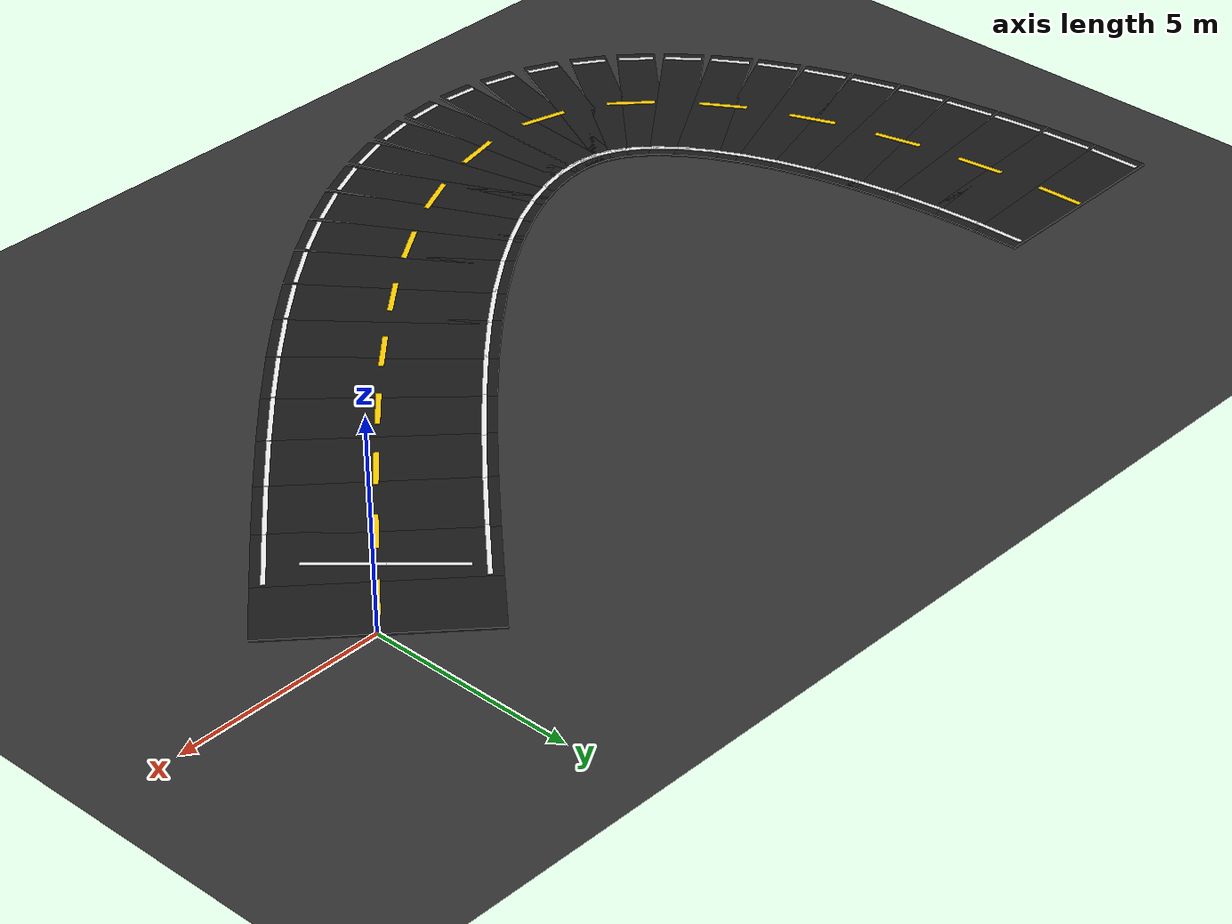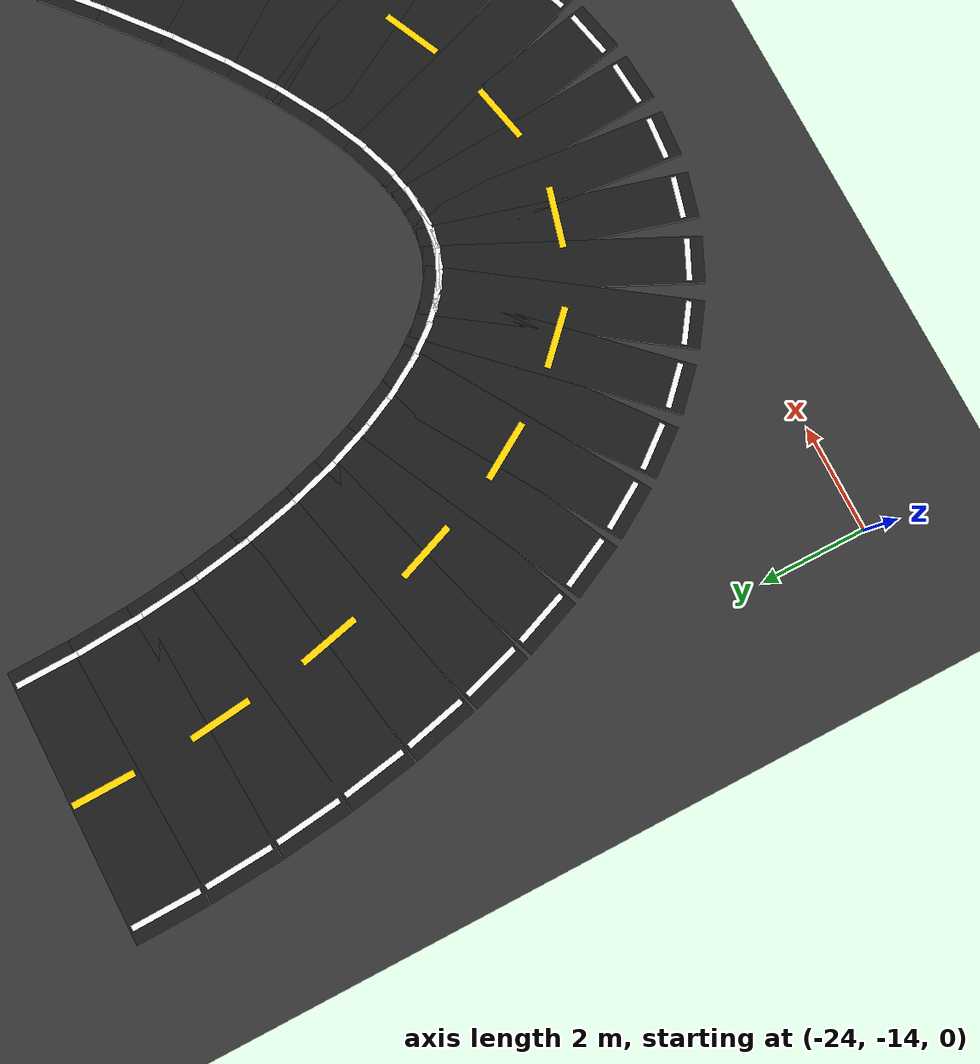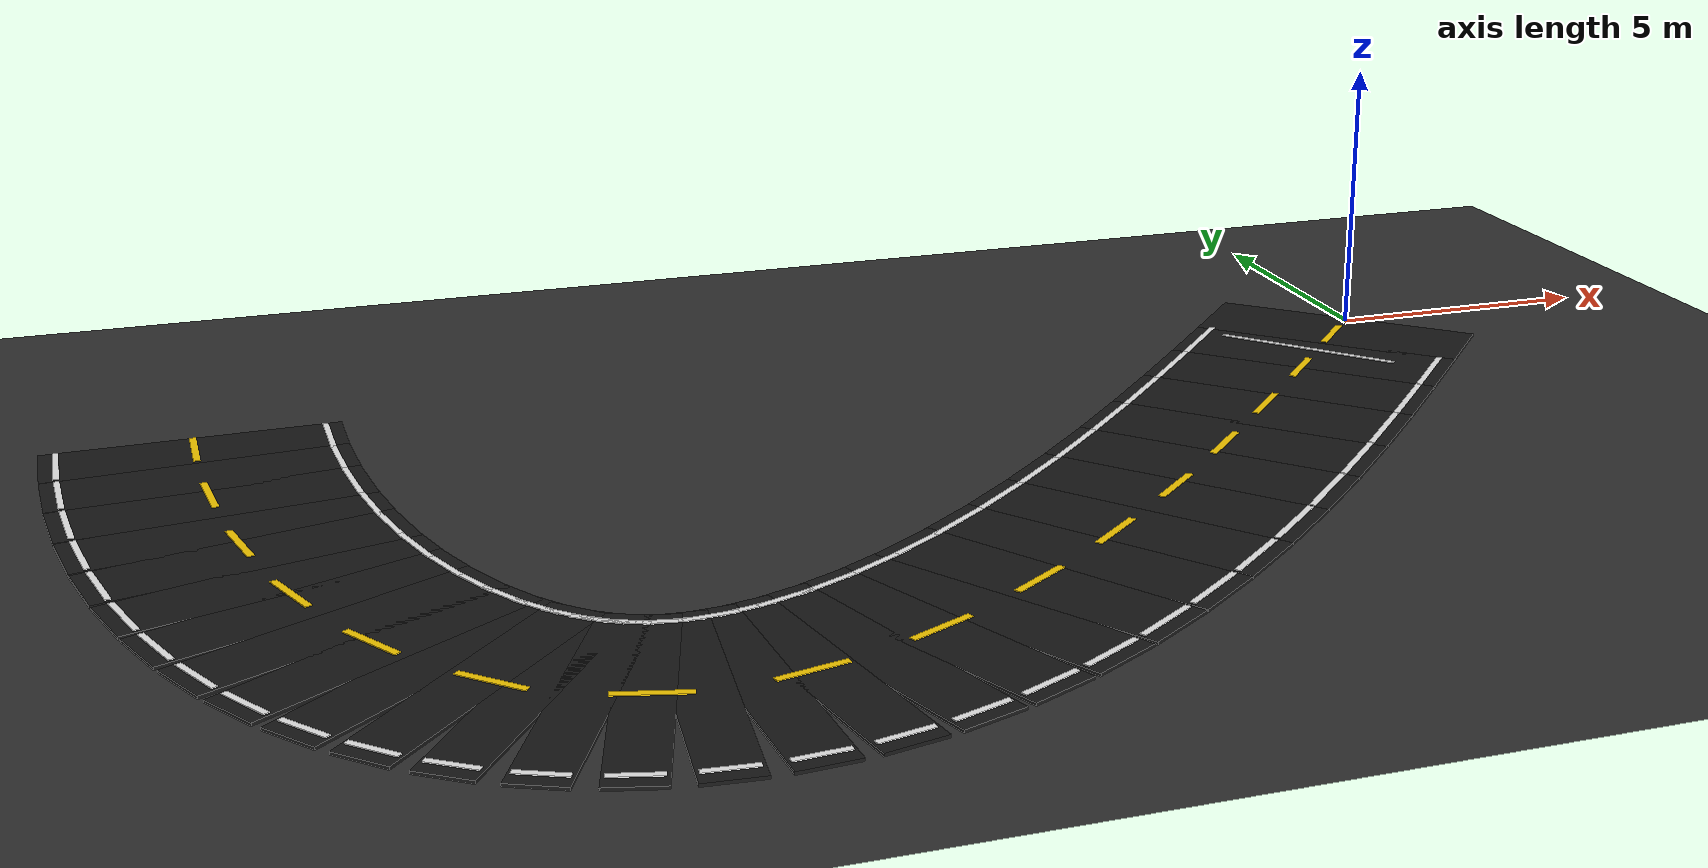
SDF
<sdf version="1.6">
 <world name="adas_figure8_circuit">
  <model name="ground">
   <static>true</static>
   <link name="link">
    <collision name="collision">
     <geometry><plane><normal>0 0 1</normal><size>80.0 80.0</size></plane></geometry>
    </collision>
    <visual name="visual">
     <geometry><plane><normal>0 0 1</normal><size>80.0 80.0</size></plane></geometry>
     <material><ambient>0.16 0.16 0.16 1</ambient><diffuse>0.20 0.20 0.20 1</diffuse></material>
    </visual>
   </link>
  </model>
  <model name="road_090">
   <static>true</static>
   <pose>-21.9849 -0.6272 0.025 0 0 -1.546764</pose>
   <link name="link">
    <collision name="collision"><geometry><box><size>1.3547 5.000 0.05</size></box></geometry></collision>
    <visual name="visual">
     <geometry><box><size>1.3547 5.000 0.05</size></box></geometry>
     <material><ambient>0.07 0.07 0.07 1</ambient><diffuse>0.10 0.10 0.10 1</diffuse></material>
    </visual>
   </link>
  </model>
  <model name="road_091">
   <static>true</static>
   <pose>-21.9247 -1.8746 0.025 0 0 -1.498082</pose>
   <link name="link">
    <collision name="collision"><geometry><box><size>1.3439 5.000 0.05</size></box></geometry></collision>
    <visual name="visual">
     <geometry><box><size>1.3439 5.000 0.05</size></box></geometry>
     <material><ambient>0.07 0.07 0.07 1</ambient><diffuse>0.10 0.10 0.10 1</diffuse></material>
    </visual>
   </link>
  </model>
  <model name="road_092">
   <static>true</static>
   <pose>-21.8043 -3.1016 0.025 0 0 -1.447513</pose>
   <link name="link">
    <collision name="collision"><geometry><box><size>1.3225 5.000 0.05</size></box></geometry></collision>
    <visual name="visual">
     <geometry><box><size>1.3225 5.000 0.05</size></box></geometry>
     <material><ambient>0.07 0.07 0.07 1</ambient><diffuse>0.10 0.10 0.10 1</diffuse></material>
    </visual>
   </link>
  </model>
  <model name="road_093">
   <static>true</static>
   <pose>-21.6242 -4.2945 0.025 0 0 -1.393677</pose>
   <link name="link">
    <collision name="collision"><geometry><box><size>1.2913 5.000 0.05</size></box></geometry></collision>
    <visual name="visual">
     <geometry><box><size>1.2913 5.000 0.05</size></box></geometry>
     <material><ambient>0.07 0.07 0.07 1</ambient><diffuse>0.10 0.10 0.10 1</diffuse></material>
    </visual>
   </link>
  </model>
  <model name="road_094">
   <static>true</static>
   <pose>-21.3848 -5.4404 0.025 0 0 -1.335014</pose>
   <link name="link">
    <collision name="collision"><geometry><box><size>1.2510 5.000 0.05</size></box></geometry></collision>
    <visual name="visual">
     <geometry><box><size>1.2510 5.000 0.05</size></box></geometry>
     <material><ambient>0.07 0.07 0.07 1</ambient><diffuse>0.10 0.10 0.10 1</diffuse></material>
    </visual>
   </link>
  </model>
  <model name="road_095">
   <static>true</static>
   <pose>-21.0868 -6.5267 0.025 0 0 -1.269703</pose>
   <link name="link">
    <collision name="collision"><geometry><box><size>1.2030 5.000 0.05</size></box></geometry></collision>
    <visual name="visual">
     <geometry><box><size>1.2030 5.000 0.05</size></box></geometry>
     <material><ambient>0.07 0.07 0.07 1</ambient><diffuse>0.10 0.10 0.10 1</diffuse></material>
    </visual>
   </link>
  </model>
  <model name="road_096">
   <static>true</static>
   <pose>-20.7310 -7.5415 0.025 0 0 -1.195586</pose>
   <link name="link">
    <collision name="collision"><geometry><box><size>1.1491 5.000 0.05</size></box></geometry></collision>
    <visual name="visual">
     <geometry><box><size>1.1491 5.000 0.05</size></box></geometry>
     <material><ambient>0.07 0.07 0.07 1</ambient><diffuse>0.10 0.10 0.10 1</diffuse></material>
    </visual>
   </link>
  </model>
  <model name="road_097">
   <static>true</static>
   <pose>-20.3184 -8.4737 0.025 0 0 -1.110140</pose>
   <link name="link">
    <collision name="collision"><geometry><box><size>1.0915 5.000 0.05</size></box></geometry></collision>
    <visual name="visual">
     <geometry><box><size>1.0915 5.000 0.05</size></box></geometry>
     <material><ambient>0.07 0.07 0.07 1</ambient><diffuse>0.10 0.10 0.10 1</diffuse></material>
    </visual>
   </link>
  </model>
  <model name="road_098">
   <static>true</static>
   <pose>-19.8501 -9.3130 0.025 0 0 -1.010547</pose>
   <link name="link">
    <collision name="collision"><geometry><box><size>1.0331 5.000 0.05</size></box></geometry></collision>
    <visual name="visual">
     <geometry><box><size>1.0331 5.000 0.05</size></box></geometry>
     <material><ambient>0.07 0.07 0.07 1</ambient><diffuse>0.10 0.10 0.10 1</diffuse></material>
    </visual>
   </link>
  </model>
  <model name="road_099">
   <static>true</static>
   <pose>-19.3274 -10.0503 0.025 0 0 -0.894005</pose>
   <link name="link">
    <collision name="collision"><geometry><box><size>0.9775 5.000 0.05</size></box></geometry></collision>
    <visual name="visual">
     <geometry><box><size>0.9775 5.000 0.05</size></box></geometry>
     <material><ambient>0.07 0.07 0.07 1</ambient><diffuse>0.10 0.10 0.10 1</diffuse></material>
    </visual>
   </link>
  </model>
  <model name="road_100">
   <static>true</static>
   <pose>-18.7517 -10.6774 0.025 0 0 -0.758473</pose>
   <link name="link">
    <collision name="collision"><geometry><box><size>0.9291 5.000 0.05</size></box></geometry></collision>
    <visual name="visual">
     <geometry><box><size>0.9291 5.000 0.05</size></box></geometry>
     <material><ambient>0.07 0.07 0.07 1</ambient><diffuse>0.10 0.10 0.10 1</diffuse></material>
    </visual>
   </link>
  </model>
  <model name="road_101">
   <static>true</static>
   <pose>-18.1246 -11.1876 0.025 0 0 -0.603974</pose>
   <link name="link">
    <collision name="collision"><geometry><box><size>0.8926 5.000 0.05</size></box></geometry></collision>
    <visual name="visual">
     <geometry><box><size>0.8926 5.000 0.05</size></box></geometry>
     <material><ambient>0.07 0.07 0.07 1</ambient><diffuse>0.10 0.10 0.10 1</diffuse></material>
    </visual>
   </link>
  </model>
  <model name="road_102">
   <static>true</static>
   <pose>-17.4478 -11.5752 0.025 0 0 -0.434146</pose>
   <link name="link">
    <collision name="collision"><geometry><box><size>0.8729 5.000 0.05</size></box></geometry></collision>
    <visual name="visual">
     <geometry><box><size>0.8729 5.000 0.05</size></box></geometry>
     <material><ambient>0.07 0.07 0.07 1</ambient><diffuse>0.10 0.10 0.10 1</diffuse></material>
    </visual>
   </link>
  </model>
  <model name="road_103">
   <static>true</static>
   <pose>-16.7232 -11.8360 0.025 0 0 -0.256877</pose>
   <link name="link">
    <collision name="collision"><geometry><box><size>0.8734 5.000 0.05</size></box></geometry></collision>
    <visual name="visual">
     <geometry><box><size>0.8734 5.000 0.05</size></box></geometry>
     <material><ambient>0.07 0.07 0.07 1</ambient><diffuse>0.10 0.10 0.10 1</diffuse></material>
    </visual>
   </link>
  </model>
  <model name="road_104">
   <static>true</static>
   <pose>-15.9528 -11.9671 0.025 0 0 -0.082725</pose>
   <link name="link">
    <collision name="collision"><geometry><box><size>0.8956 5.000 0.05</size></box></geometry></collision>
    <visual name="visual">
     <geometry><box><size>0.8956 5.000 0.05</size></box></geometry>
     <material><ambient>0.07 0.07 0.07 1</ambient><diffuse>0.10 0.10 0.10 1</diffuse></material>
    </visual>
   </link>
  </model>
  <model name="road_105">
   <static>true</static>
   <pose>-15.1386 -11.9671 0.025 0 0 0.078521</pose>
   <link name="link">
    <collision name="collision"><geometry><box><size>0.9381 5.000 0.05</size></box></geometry></collision>
    <visual name="visual">
     <geometry><box><size>0.9381 5.000 0.05</size></box></geometry>
     <material><ambient>0.07 0.07 0.07 1</ambient><diffuse>0.10 0.10 0.10 1</diffuse></material>
    </visual>
   </link>
  </model>
  <model name="road_106">
   <static>true</static>
   <pose>-14.2830 -11.8360 0.025 0 0 0.220696</pose>
   <link name="link">
    <collision name="collision"><geometry><box><size>0.9976 5.000 0.05</size></box></geometry></collision>
    <visual name="visual">
     <geometry><box><size>0.9976 5.000 0.05</size></box></geometry>
     <material><ambient>0.07 0.07 0.07 1</ambient><diffuse>0.10 0.10 0.10 1</diffuse></material>
    </visual>
   </link>
  </model>
  <model name="road_107">
   <static>true</static>
   <pose>-13.3882 -11.5752 0.025 0 0 0.341806</pose>
   <link name="link">
    <collision name="collision"><geometry><box><size>1.0699 5.000 0.05</size></box></geometry></collision>
    <visual name="visual">
     <geometry><box><size>1.0699 5.000 0.05</size></box></geometry>
     <material><ambient>0.07 0.07 0.07 1</ambient><diffuse>0.10 0.10 0.10 1</diffuse></material>
    </visual>
   </link>
  </model>
  <model name="road_108">
   <static>true</static>
   <pose>-12.4567 -11.1876 0.025 0 0 0.442808</pose>
   <link name="link">
    <collision name="collision"><geometry><box><size>1.1505 5.000 0.05</size></box></geometry></collision>
    <visual name="visual">
     <geometry><box><size>1.1505 5.000 0.05</size></box></geometry>
     <material><ambient>0.07 0.07 0.07 1</ambient><diffuse>0.10 0.10 0.10 1</diffuse></material>
    </visual>
   </link>
  </model>
  <model name="road_109">
   <static>true</static>
   <pose>-11.4910 -10.6774 0.025 0 0 0.526076</pose>
   <link name="link">
    <collision name="collision"><geometry><box><size>1.2356 5.000 0.05</size></box></geometry></collision>
    <visual name="visual">
     <geometry><box><size>1.2356 5.000 0.05</size></box></geometry>
     <material><ambient>0.07 0.07 0.07 1</ambient><diffuse>0.10 0.10 0.10 1</diffuse></material>
    </visual>
   </link>
  </model>
  <model name="road_110">
   <static>true</static>
   <pose>-10.4939 -10.0503 0.025 0 0 0.594333</pose>
   <link name="link">
    <collision name="collision"><geometry><box><size>1.3217 5.000 0.05</size></box></geometry></collision>
    <visual name="visual">
     <geometry><box><size>1.3217 5.000 0.05</size></box></geometry>
     <material><ambient>0.07 0.07 0.07 1</ambient><diffuse>0.10 0.10 0.10 1</diffuse></material>
    </visual>
   </link>
  </model>
  <model name="road_111">
   <static>true</static>
   <pose>-9.4680 -9.3130 0.025 0 0 0.650103</pose>
   <link name="link">
    <collision name="collision"><geometry><box><size>1.4060 5.000 0.05</size></box></geometry></collision>
    <visual name="visual">
     <geometry><box><size>1.4060 5.000 0.05</size></box></geometry>
     <material><ambient>0.07 0.07 0.07 1</ambient><diffuse>0.10 0.10 0.10 1</diffuse></material>
    </visual>
   </link>
  </model>
  <model name="road_112">
   <static>true</static>
   <pose>-8.4162 -8.4737 0.025 0 0 0.695520</pose>
   <link name="link">
    <collision name="collision"><geometry><box><size>1.4861 5.000 0.05</size></box></geometry></collision>
    <visual name="visual">
     <geometry><box><size>1.4861 5.000 0.05</size></box></geometry>
     <material><ambient>0.07 0.07 0.07 1</ambient><diffuse>0.10 0.10 0.10 1</diffuse></material>
    </visual>
   </link>
  </model>
  <model name="road_113">
   <static>true</static>
   <pose>-7.3412 -7.5415 0.025 0 0 0.732304</pose>
   <link name="link">
    <collision name="collision"><geometry><box><size>1.5600 5.000 0.05</size></box></geometry></collision>
    <visual name="visual">
     <geometry><box><size>1.5600 5.000 0.05</size></box></geometry>
     <material><ambient>0.07 0.07 0.07 1</ambient><diffuse>0.10 0.10 0.10 1</diffuse></material>
    </visual>
   </link>
  </model>
  <model name="road_114">
   <static>true</static>
   <pose>-6.2462 -6.5267 0.025 0 0 0.761799</pose>
   <link name="link">
    <collision name="collision"><geometry><box><size>1.6262 5.000 0.05</size></box></geometry></collision>
    <visual name="visual">
     <geometry><box><size>1.6262 5.000 0.05</size></box></geometry>
     <material><ambient>0.07 0.07 0.07 1</ambient><diffuse>0.10 0.10 0.10 1</diffuse></material>
    </visual>
   </link>
  </model>
  <model name="road_115">
   <static>true</static>
   <pose>-5.1340 -5.4404 0.025 0 0 0.785040</pose>
   <link name="link">
    <collision name="collision"><geometry><box><size>1.6833 5.000 0.05</size></box></geometry></collision>
    <visual name="visual">
     <geometry><box><size>1.6833 5.000 0.05</size></box></geometry>
     <material><ambient>0.07 0.07 0.07 1</ambient><diffuse>0.10 0.10 0.10 1</diffuse></material>
    </visual>
   </link>
  </model>
  <model name="road_116">
   <static>true</static>
   <pose>-4.0078 -4.2945 0.025 0 0 0.802808</pose>
   <link name="link">
    <collision name="collision"><geometry><box><size>1.7302 5.000 0.05</size></box></geometry></collision>
    <visual name="visual">
     <geometry><box><size>1.7302 5.000 0.05</size></box></geometry>
     <material><ambient>0.07 0.07 0.07 1</ambient><diffuse>0.10 0.10 0.10 1</diffuse></material>
    </visual>
   </link>
  </model>
  <model name="road_117">
   <static>true</static>
   <pose>-2.8706 -3.1016 0.025 0 0 0.815676</pose>
   <link name="link">
    <collision name="collision"><geometry><box><size>1.7661 5.000 0.05</size></box></geometry></collision>
    <visual name="visual">
     <geometry><box><size>1.7661 5.000 0.05</size></box></geometry>
     <material><ambient>0.07 0.07 0.07 1</ambient><diffuse>0.10 0.10 0.10 1</diffuse></material>
    </visual>
   </link>
  </model>
  <model name="road_118">
   <static>true</static>
   <pose>-1.7255 -1.8746 0.025 0 0 0.824044</pose>
   <link name="link">
    <collision name="collision"><geometry><box><size>1.7904 5.000 0.05</size></box></geometry></collision>
    <visual name="visual">
     <geometry><box><size>1.7904 5.000 0.05</size></box></geometry>
     <material><ambient>0.07 0.07 0.07 1</ambient><diffuse>0.10 0.10 0.10 1</diffuse></material>
    </visual>
   </link>
  </model>
  <model name="road_119">
   <static>true</static>
   <pose>-0.5757 -0.6272 0.025 0 0 0.828166</pose>
   <link name="link">
    <collision name="collision"><geometry><box><size>1.8027 5.000 0.05</size></box></geometry></collision>
    <visual name="visual">
     <geometry><box><size>1.8027 5.000 0.05</size></box></geometry>
     <material><ambient>0.07 0.07 0.07 1</ambient><diffuse>0.10 0.10 0.10 1</diffuse></material>
    </visual>
   </link>
  </model>
  <model name="center_dash_047">
   <static>true</static>
   <pose>-21.9866 -0.5561 0.058 0 0 -1.546764</pose>
   <link name="link">
    <visual name="visual">
     <geometry><box><size>1.150 0.12 0.02</size></box></geometry>
     <material><ambient>1 0.82 0 1</ambient><diffuse>1 0.82 0 1</diffuse></material>
    </visual>
   </link>
  </model>
  <model name="center_dash_048">
   <static>true</static>
   <pose>-21.8447 -2.7756 0.058 0 0 -1.447513</pose>
   <link name="link">
    <visual name="visual">
     <geometry><box><size>1.150 0.12 0.02</size></box></geometry>
     <material><ambient>1 0.82 0 1</ambient><diffuse>1 0.82 0 1</diffuse></material>
    </visual>
   </link>
  </model>
  <model name="center_dash_049">
   <static>true</static>
   <pose>-21.4973 -4.9724 0.058 0 0 -1.335014</pose>
   <link name="link">
    <visual name="visual">
     <geometry><box><size>1.150 0.12 0.02</size></box></geometry>
     <material><ambient>1 0.82 0 1</ambient><diffuse>1 0.82 0 1</diffuse></material>
    </visual>
   </link>
  </model>
  <model name="center_dash_050">
   <static>true</static>
   <pose>-20.8994 -7.1141 0.058 0 0 -1.195586</pose>
   <link name="link">
    <visual name="visual">
     <geometry><box><size>1.150 0.12 0.02</size></box></geometry>
     <material><ambient>1 0.82 0 1</ambient><diffuse>1 0.82 0 1</diffuse></material>
    </visual>
   </link>
  </model>
  <model name="center_dash_051">
   <static>true</static>
   <pose>-19.9653 -9.1292 0.058 0 0 -1.010547</pose>
   <link name="link">
    <visual name="visual">
     <geometry><box><size>1.150 0.12 0.02</size></box></geometry>
     <material><ambient>1 0.82 0 1</ambient><diffuse>1 0.82 0 1</diffuse></material>
    </visual>
   </link>
  </model>
  <model name="center_dash_052">
   <static>true</static>
   <pose>-18.5705 -10.8491 0.058 0 0 -0.758473</pose>
   <link name="link">
    <visual name="visual">
     <geometry><box><size>1.150 0.12 0.02</size></box></geometry>
     <material><ambient>1 0.82 0 1</ambient><diffuse>1 0.82 0 1</diffuse></material>
    </visual>
   </link>
  </model>
  <model name="center_dash_053">
   <static>true</static>
   <pose>-16.6187 -11.8635 0.058 0 0 -0.256877</pose>
   <link name="link">
    <visual name="visual">
     <geometry><box><size>1.150 0.12 0.02</size></box></geometry>
     <material><ambient>1 0.82 0 1</ambient><diffuse>1 0.82 0 1</diffuse></material>
    </visual>
   </link>
  </model>
  <model name="center_dash_054">
   <static>true</static>
   <pose>-14.4156 -11.8658 0.058 0 0 0.220696</pose>
   <link name="link">
    <visual name="visual">
     <geometry><box><size>1.150 0.12 0.02</size></box></geometry>
     <material><ambient>1 0.82 0 1</ambient><diffuse>1 0.82 0 1</diffuse></material>
    </visual>
   </link>
  </model>
  <model name="center_dash_055">
   <static>true</static>
   <pose>-12.3255 -11.1254 0.058 0 0 0.442808</pose>
   <link name="link">
    <visual name="visual">
     <geometry><box><size>1.150 0.12 0.02</size></box></geometry>
     <material><ambient>1 0.82 0 1</ambient><diffuse>1 0.82 0 1</diffuse></material>
    </visual>
   </link>
  </model>
  <model name="center_dash_056">
   <static>true</static>
   <pose>-10.4122 -9.9951 0.058 0 0 0.594333</pose>
   <link name="link">
    <visual name="visual">
     <geometry><box><size>1.150 0.12 0.02</size></box></geometry>
     <material><ambient>1 0.82 0 1</ambient><diffuse>1 0.82 0 1</diffuse></material>
    </visual>
   </link>
  </model>
  <model name="center_dash_057">
   <static>true</static>
   <pose>-8.6358 -8.6570 0.058 0 0 0.695520</pose>
   <link name="link">
    <visual name="visual">
     <geometry><box><size>1.150 0.12 0.02</size></box></geometry>
     <material><ambient>1 0.82 0 1</ambient><diffuse>1 0.82 0 1</diffuse></material>
    </visual>
   </link>
  </model>
  <model name="center_dash_058">
   <static>true</static>
   <pose>-6.9576 -7.1966 0.058 0 0 0.732304</pose>
   <link name="link">
    <visual name="visual">
     <geometry><box><size>1.150 0.12 0.02</size></box></geometry>
     <material><ambient>1 0.82 0 1</ambient><diffuse>1 0.82 0 1</diffuse></material>
    </visual>
   </link>
  </model>
  <model name="center_dash_059">
   <static>true</static>
   <pose>-5.3511 -5.6573 0.058 0 0 0.785040</pose>
   <link name="link">
    <visual name="visual">
     <geometry><box><size>1.150 0.12 0.02</size></box></geometry>
     <material><ambient>1 0.82 0 1</ambient><diffuse>1 0.82 0 1</diffuse></material>
    </visual>
   </link>
  </model>
  <model name="center_dash_060">
   <static>true</static>
   <pose>-3.7914 -4.0704 0.058 0 0 0.802808</pose>
   <link name="link">
    <visual name="visual">
     <geometry><box><size>1.150 0.12 0.02</size></box></geometry>
     <material><ambient>1 0.82 0 1</ambient><diffuse>1 0.82 0 1</diffuse></material>
    </visual>
   </link>
  </model>
  <model name="center_dash_061">
   <static>true</static>
   <pose>-2.2620 -2.4543 0.058 0 0 0.824044</pose>
   <link name="link">
    <visual name="visual">
     <geometry><box><size>1.150 0.12 0.02</size></box></geometry>
     <material><ambient>1 0.82 0 1</ambient><diffuse>1 0.82 0 1</diffuse></material>
    </visual>
   </link>
  </model>
  <model name="center_dash_062">
   <static>true</static>
   <pose>-0.7523 -0.8196 0.058 0 0 0.828166</pose>
   <link name="link">
    <visual name="visual">
     <geometry><box><size>1.150 0.12 0.02</size></box></geometry>
     <material><ambient>1 0.82 0 1</ambient><diffuse>1 0.82 0 1</diffuse></material>
    </visual>
   </link>
  </model>
  <model name="edge_left_059">
   <static>true</static>
   <pose>-1.0598 -2.1284 0.058 0 0 2.313427</pose>
   <link name="link">
    <visual name="visual">
     <geometry><box><size>1.7027 0.10 0.02</size></box></geometry>
     <material><ambient>0.95 0.95 0.95 1</ambient><diffuse>0.95 0.95 0.95 1</diffuse></material>
    </visual>
   </link>
  </model>
  <model name="edge_left_060">
   <static>true</static>
   <pose>-2.2112 -0.8741 0.058 0 0 2.313427</pose>
   <link name="link">
    <visual name="visual">
     <geometry><box><size>1.7027 0.10 0.02</size></box></geometry>
     <material><ambient>0.95 0.95 0.95 1</ambient><diffuse>0.95 0.95 0.95 1</diffuse></material>
    </visual>
   </link>
  </model>
  <model name="edge_left_090">
   <static>true</static>
   <pose>-19.7656 -0.5738 0.058 0 0 -1.546764</pose>
   <link name="link">
    <visual name="visual">
     <geometry><box><size>1.2547 0.10 0.02</size></box></geometry>
     <material><ambient>0.95 0.95 0.95 1</ambient><diffuse>0.95 0.95 0.95 1</diffuse></material>
    </visual>
   </link>
  </model>
  <model name="edge_left_091">
   <static>true</static>
   <pose>-19.7105 -1.7134 0.058 0 0 -1.498082</pose>
   <link name="link">
    <visual name="visual">
     <geometry><box><size>1.2439 0.10 0.02</size></box></geometry>
     <material><ambient>0.95 0.95 0.95 1</ambient><diffuse>0.95 0.95 0.95 1</diffuse></material>
    </visual>
   </link>
  </model>
  <model name="edge_left_092">
   <static>true</static>
   <pose>-19.6012 -2.8286 0.058 0 0 -1.447513</pose>
   <link name="link">
    <visual name="visual">
     <geometry><box><size>1.2225 0.10 0.02</size></box></geometry>
     <material><ambient>0.95 0.95 0.95 1</ambient><diffuse>0.95 0.95 0.95 1</diffuse></material>
    </visual>
   </link>
  </model>
  <model name="edge_left_093">
   <static>true</static>
   <pose>-19.4389 -3.9034 0.058 0 0 -1.393677</pose>
   <link name="link">
    <visual name="visual">
     <geometry><box><size>1.1913 0.10 0.02</size></box></geometry>
     <material><ambient>0.95 0.95 0.95 1</ambient><diffuse>0.95 0.95 0.95 1</diffuse></material>
    </visual>
   </link>
  </model>
  <model name="edge_left_094">
   <static>true</static>
   <pose>-19.2262 -4.9218 0.058 0 0 -1.335014</pose>
   <link name="link">
    <visual name="visual">
     <geometry><box><size>1.1510 0.10 0.02</size></box></geometry>
     <material><ambient>0.95 0.95 0.95 1</ambient><diffuse>0.95 0.95 0.95 1</diffuse></material>
    </visual>
   </link>
  </model>
  <model name="edge_left_095">
   <static>true</static>
   <pose>-18.9667 -5.8683 0.058 0 0 -1.269703</pose>
   <link name="link">
    <visual name="visual">
     <geometry><box><size>1.1030 0.10 0.02</size></box></geometry>
     <material><ambient>0.95 0.95 0.95 1</ambient><diffuse>0.95 0.95 0.95 1</diffuse></material>
    </visual>
   </link>
  </model>
  <model name="edge_left_096">
   <static>true</static>
   <pose>-18.6655 -6.7279 0.058 0 0 -1.195586</pose>
   <link name="link">
    <visual name="visual">
     <geometry><box><size>1.0491 0.10 0.02</size></box></geometry>
     <material><ambient>0.95 0.95 0.95 1</ambient><diffuse>0.95 0.95 0.95 1</diffuse></material>
    </visual>
   </link>
  </model>
  <model name="edge_left_097">
   <static>true</static>
   <pose>-18.3298 -7.4868 0.058 0 0 -1.110140</pose>
   <link name="link">
    <visual name="visual">
     <geometry><box><size>0.9915 0.10 0.02</size></box></geometry>
     <material><ambient>0.95 0.95 0.95 1</ambient><diffuse>0.95 0.95 0.95 1</diffuse></material>
    </visual>
   </link>
  </model>
  <model name="edge_left_098">
   <static>true</static>
   <pose>-17.9695 -8.1333 0.058 0 0 -1.010547</pose>
   <link name="link">
    <visual name="visual">
     <geometry><box><size>0.9331 0.10 0.02</size></box></geometry>
     <material><ambient>0.95 0.95 0.95 1</ambient><diffuse>0.95 0.95 0.95 1</diffuse></material>
    </visual>
   </link>
  </model>
  <model name="edge_left_099">
   <static>true</static>
   <pose>-17.5967 -8.6599 0.058 0 0 -0.894005</pose>
   <link name="link">
    <visual name="visual">
     <geometry><box><size>0.8775 0.10 0.02</size></box></geometry>
     <material><ambient>0.95 0.95 0.95 1</ambient><diffuse>0.95 0.95 0.95 1</diffuse></material>
    </visual>
   </link>
  </model>
  <model name="edge_left_100">
   <static>true</static>
   <pose>-17.2247 -9.0660 0.058 0 0 -0.758473</pose>
   <link name="link">
    <visual name="visual">
     <geometry><box><size>0.8291 0.10 0.02</size></box></geometry>
     <material><ambient>0.95 0.95 0.95 1</ambient><diffuse>0.95 0.95 0.95 1</diffuse></material>
    </visual>
   </link>
  </model>
  <model name="edge_left_101">
   <static>true</static>
   <pose>-16.8638 -9.3604 0.058 0 0 -0.603974</pose>
   <link name="link">
    <visual name="visual">
     <geometry><box><size>0.7926 0.10 0.02</size></box></geometry>
     <material><ambient>0.95 0.95 0.95 1</ambient><diffuse>0.95 0.95 0.95 1</diffuse></material>
    </visual>
   </link>
  </model>
  <model name="edge_left_102">
   <static>true</static>
   <pose>-16.5140 -9.5612 0.058 0 0 -0.434146</pose>
   <link name="link">
    <visual name="visual">
     <geometry><box><size>0.7729 0.10 0.02</size></box></geometry>
     <material><ambient>0.95 0.95 0.95 1</ambient><diffuse>0.95 0.95 0.95 1</diffuse></material>
    </visual>
   </link>
  </model>
  <model name="edge_left_103">
   <static>true</static>
   <pose>-16.1592 -9.6889 0.058 0 0 -0.256877</pose>
   <link name="link">
    <visual name="visual">
     <geometry><box><size>0.7734 0.10 0.02</size></box></geometry>
     <material><ambient>0.95 0.95 0.95 1</ambient><diffuse>0.95 0.95 0.95 1</diffuse></material>
    </visual>
   </link>
  </model>
  <model name="edge_left_104">
   <static>true</static>
   <pose>-15.7693 -9.7547 0.058 0 0 -0.082725</pose>
   <link name="link">
    <visual name="visual">
     <geometry><box><size>0.7956 0.10 0.02</size></box></geometry>
     <material><ambient>0.95 0.95 0.95 1</ambient><diffuse>0.95 0.95 0.95 1</diffuse></material>
    </visual>
   </link>
  </model>
  <model name="edge_left_105">
   <static>true</static>
   <pose>-15.3127 -9.7540 0.058 0 0 0.078521</pose>
   <link name="link">
    <visual name="visual">
     <geometry><box><size>0.8381 0.10 0.02</size></box></geometry>
     <material><ambient>0.95 0.95 0.95 1</ambient><diffuse>0.95 0.95 0.95 1</diffuse></material>
    </visual>
   </link>
  </model>
  <model name="edge_left_106">
   <static>true</static>
   <pose>-14.7689 -9.6699 0.058 0 0 0.220696</pose>
   <link name="link">
    <visual name="visual">
     <geometry><box><size>0.8976 0.10 0.02</size></box></geometry>
     <material><ambient>0.95 0.95 0.95 1</ambient><diffuse>0.95 0.95 0.95 1</diffuse></material>
    </visual>
   </link>
  </model>
  <model name="edge_left_107">
   <static>true</static>
   <pose>-14.1323 -9.4836 0.058 0 0 0.341806</pose>
   <link name="link">
    <visual name="visual">
     <geometry><box><size>0.9699 0.10 0.02</size></box></geometry>
     <material><ambient>0.95 0.95 0.95 1</ambient><diffuse>0.95 0.95 0.95 1</diffuse></material>
    </visual>
   </link>
  </model>
  <model name="edge_left_108">
   <static>true</static>
   <pose>-13.4079 -9.1817 0.058 0 0 0.442808</pose>
   <link name="link">
    <visual name="visual">
     <geometry><box><size>1.0505 0.10 0.02</size></box></geometry>
     <material><ambient>0.95 0.95 0.95 1</ambient><diffuse>0.95 0.95 0.95 1</diffuse></material>
    </visual>
   </link>
  </model>
  <model name="edge_left_109">
   <static>true</static>
   <pose>-12.6058 -8.7576 0.058 0 0 0.526076</pose>
   <link name="link">
    <visual name="visual">
     <geometry><box><size>1.1356 0.10 0.02</size></box></geometry>
     <material><ambient>0.95 0.95 0.95 1</ambient><diffuse>0.95 0.95 0.95 1</diffuse></material>
    </visual>
   </link>
  </model>
  <model name="edge_left_110">
   <static>true</static>
   <pose>-11.7370 -8.2109 0.058 0 0 0.594333</pose>
   <link name="link">
    <visual name="visual">
     <geometry><box><size>1.2217 0.10 0.02</size></box></geometry>
     <material><ambient>0.95 0.95 0.95 1</ambient><diffuse>0.95 0.95 0.95 1</diffuse></material>
    </visual>
   </link>
  </model>
  <model name="edge_left_111">
   <static>true</static>
   <pose>-10.8117 -7.5458 0.058 0 0 0.650103</pose>
   <link name="link">
    <visual name="visual">
     <geometry><box><size>1.3060 0.10 0.02</size></box></geometry>
     <material><ambient>0.95 0.95 0.95 1</ambient><diffuse>0.95 0.95 0.95 1</diffuse></material>
    </visual>
   </link>
  </model>
  <model name="edge_left_112">
   <static>true</static>
   <pose>-9.8387 -6.7693 0.058 0 0 0.695520</pose>
   <link name="link">
    <visual name="visual">
     <geometry><box><size>1.3861 0.10 0.02</size></box></geometry>
     <material><ambient>0.95 0.95 0.95 1</ambient><diffuse>0.95 0.95 0.95 1</diffuse></material>
    </visual>
   </link>
  </model>
  <model name="edge_left_113">
   <static>true</static>
   <pose>-8.8255 -5.8906 0.058 0 0 0.732304</pose>
   <link name="link">
    <visual name="visual">
     <geometry><box><size>1.4600 0.10 0.02</size></box></geometry>
     <material><ambient>0.95 0.95 0.95 1</ambient><diffuse>0.95 0.95 0.95 1</diffuse></material>
    </visual>
   </link>
  </model>
  <model name="edge_left_114">
   <static>true</static>
   <pose>-7.7785 -4.9203 0.058 0 0 0.761799</pose>
   <link name="link">
    <visual name="visual">
     <geometry><box><size>1.5262 0.10 0.02</size></box></geometry>
     <material><ambient>0.95 0.95 0.95 1</ambient><diffuse>0.95 0.95 0.95 1</diffuse></material>
    </visual>
   </link>
  </model>
  <model name="edge_left_115">
   <static>true</static>
   <pose>-6.7033 -3.8701 0.058 0 0 0.785040</pose>
   <link name="link">
    <visual name="visual">
     <geometry><box><size>1.5833 0.10 0.02</size></box></geometry>
     <material><ambient>0.95 0.95 0.95 1</ambient><diffuse>0.95 0.95 0.95 1</diffuse></material>
    </visual>
   </link>
  </model>
  <model name="edge_left_116">
   <static>true</static>
   <pose>-5.6047 -2.7523 0.058 0 0 0.802808</pose>
   <link name="link">
    <visual name="visual">
     <geometry><box><size>1.6302 0.10 0.02</size></box></geometry>
     <material><ambient>0.95 0.95 0.95 1</ambient><diffuse>0.95 0.95 0.95 1</diffuse></material>
    </visual>
   </link>
  </model>
  <model name="edge_left_117">
   <static>true</static>
   <pose>-4.4872 -1.5800 0.058 0 0 0.815676</pose>
   <link name="link">
    <visual name="visual">
     <geometry><box><size>1.6661 0.10 0.02</size></box></geometry>
     <material><ambient>0.95 0.95 0.95 1</ambient><diffuse>0.95 0.95 0.95 1</diffuse></material>
    </visual>
   </link>
  </model>
  <model name="edge_left_118">
   <static>true</static>
   <pose>-3.3548 -0.3667 0.058 0 0 0.824044</pose>
   <link name="link">
    <visual name="visual">
     <geometry><box><size>1.6904 0.10 0.02</size></box></geometry>
     <material><ambient>0.95 0.95 0.95 1</ambient><diffuse>0.95 0.95 0.95 1</diffuse></material>
    </visual>
   </link>
  </model>
  <model name="edge_right_090">
   <static>true</static>
   <pose>-24.2043 -0.6805 0.058 0 0 -1.546764</pose>
   <link name="link">
    <visual name="visual">
     <geometry><box><size>1.2547 0.10 0.02</size></box></geometry>
     <material><ambient>0.95 0.95 0.95 1</ambient><diffuse>0.95 0.95 0.95 1</diffuse></material>
    </visual>
   </link>
  </model>
  <model name="edge_right_091">
   <static>true</static>
   <pose>-24.1388 -2.0359 0.058 0 0 -1.498082</pose>
   <link name="link">
    <visual name="visual">
     <geometry><box><size>1.2439 0.10 0.02</size></box></geometry>
     <material><ambient>0.95 0.95 0.95 1</ambient><diffuse>0.95 0.95 0.95 1</diffuse></material>
    </visual>
   </link>
  </model>
  <model name="edge_right_092">
   <static>true</static>
   <pose>-24.0075 -3.3746 0.058 0 0 -1.447513</pose>
   <link name="link">
    <visual name="visual">
     <geometry><box><size>1.2225 0.10 0.02</size></box></geometry>
     <material><ambient>0.95 0.95 0.95 1</ambient><diffuse>0.95 0.95 0.95 1</diffuse></material>
    </visual>
   </link>
  </model>
  <model name="edge_right_093">
   <static>true</static>
   <pose>-23.8095 -4.6857 0.058 0 0 -1.393677</pose>
   <link name="link">
    <visual name="visual">
     <geometry><box><size>1.1913 0.10 0.02</size></box></geometry>
     <material><ambient>0.95 0.95 0.95 1</ambient><diffuse>0.95 0.95 0.95 1</diffuse></material>
    </visual>
   </link>
  </model>
  <model name="edge_right_094">
   <static>true</static>
   <pose>-23.5434 -5.9590 0.058 0 0 -1.335014</pose>
   <link name="link">
    <visual name="visual">
     <geometry><box><size>1.1510 0.10 0.02</size></box></geometry>
     <material><ambient>0.95 0.95 0.95 1</ambient><diffuse>0.95 0.95 0.95 1</diffuse></material>
    </visual>
   </link>
  </model>
  <model name="edge_right_095">
   <static>true</static>
   <pose>-23.2069 -7.1851 0.058 0 0 -1.269703</pose>
   <link name="link">
    <visual name="visual">
     <geometry><box><size>1.1030 0.10 0.02</size></box></geometry>
     <material><ambient>0.95 0.95 0.95 1</ambient><diffuse>0.95 0.95 0.95 1</diffuse></material>
    </visual>
   </link>
  </model>
  <model name="edge_right_096">
   <static>true</static>
   <pose>-22.7966 -8.3551 0.058 0 0 -1.195586</pose>
   <link name="link">
    <visual name="visual">
     <geometry><box><size>1.0491 0.10 0.02</size></box></geometry>
     <material><ambient>0.95 0.95 0.95 1</ambient><diffuse>0.95 0.95 0.95 1</diffuse></material>
    </visual>
   </link>
  </model>
  <model name="edge_right_097">
   <static>true</static>
   <pose>-22.3070 -9.4605 0.058 0 0 -1.110140</pose>
   <link name="link">
    <visual name="visual">
     <geometry><box><size>0.9915 0.10 0.02</size></box></geometry>
     <material><ambient>0.95 0.95 0.95 1</ambient><diffuse>0.95 0.95 0.95 1</diffuse></material>
    </visual>
   </link>
  </model>
  <model name="edge_right_098">
   <static>true</static>
   <pose>-21.7307 -10.4927 0.058 0 0 -1.010547</pose>
   <link name="link">
    <visual name="visual">
     <geometry><box><size>0.9331 0.10 0.02</size></box></geometry>
     <material><ambient>0.95 0.95 0.95 1</ambient><diffuse>0.95 0.95 0.95 1</diffuse></material>
    </visual>
   </link>
  </model>
  <model name="edge_right_099">
   <static>true</static>
   <pose>-21.0580 -11.4406 0.058 0 0 -0.894005</pose>
   <link name="link">
    <visual name="visual">
     <geometry><box><size>0.8775 0.10 0.02</size></box></geometry>
     <material><ambient>0.95 0.95 0.95 1</ambient><diffuse>0.95 0.95 0.95 1</diffuse></material>
    </visual>
   </link>
  </model>
  <model name="edge_right_100">
   <static>true</static>
   <pose>-20.2786 -12.2889 0.058 0 0 -0.758473</pose>
   <link name="link">
    <visual name="visual">
     <geometry><box><size>0.8291 0.10 0.02</size></box></geometry>
     <material><ambient>0.95 0.95 0.95 1</ambient><diffuse>0.95 0.95 0.95 1</diffuse></material>
    </visual>
   </link>
  </model>
  <model name="edge_right_101">
   <static>true</static>
   <pose>-19.3853 -13.0149 0.058 0 0 -0.603974</pose>
   <link name="link">
    <visual name="visual">
     <geometry><box><size>0.7926 0.10 0.02</size></box></geometry>
     <material><ambient>0.95 0.95 0.95 1</ambient><diffuse>0.95 0.95 0.95 1</diffuse></material>
    </visual>
   </link>
  </model>
  <model name="edge_right_102">
   <static>true</static>
   <pose>-18.3816 -13.5893 0.058 0 0 -0.434146</pose>
   <link name="link">
    <visual name="visual">
     <geometry><box><size>0.7729 0.10 0.02</size></box></geometry>
     <material><ambient>0.95 0.95 0.95 1</ambient><diffuse>0.95 0.95 0.95 1</diffuse></material>
    </visual>
   </link>
  </model>
  <model name="edge_right_103">
   <static>true</static>
   <pose>-17.2872 -13.9832 0.058 0 0 -0.256877</pose>
   <link name="link">
    <visual name="visual">
     <geometry><box><size>0.7734 0.10 0.02</size></box></geometry>
     <material><ambient>0.95 0.95 0.95 1</ambient><diffuse>0.95 0.95 0.95 1</diffuse></material>
    </visual>
   </link>
  </model>
  <model name="edge_right_104">
   <static>true</static>
   <pose>-16.1362 -14.1795 0.058 0 0 -0.082725</pose>
   <link name="link">
    <visual name="visual">
     <geometry><box><size>0.7956 0.10 0.02</size></box></geometry>
     <material><ambient>0.95 0.95 0.95 1</ambient><diffuse>0.95 0.95 0.95 1</diffuse></material>
    </visual>
   </link>
  </model>
  <model name="edge_right_105">
   <static>true</static>
   <pose>-14.9645 -14.1803 0.058 0 0 0.078521</pose>
   <link name="link">
    <visual name="visual">
     <geometry><box><size>0.8381 0.10 0.02</size></box></geometry>
     <material><ambient>0.95 0.95 0.95 1</ambient><diffuse>0.95 0.95 0.95 1</diffuse></material>
    </visual>
   </link>
  </model>
  <model name="edge_right_106">
   <static>true</static>
   <pose>-13.7970 -14.0022 0.058 0 0 0.220696</pose>
   <link name="link">
    <visual name="visual">
     <geometry><box><size>0.8976 0.10 0.02</size></box></geometry>
     <material><ambient>0.95 0.95 0.95 1</ambient><diffuse>0.95 0.95 0.95 1</diffuse></material>
    </visual>
   </link>
  </model>
  <model name="edge_right_107">
   <static>true</static>
   <pose>-12.6440 -13.6668 0.058 0 0 0.341806</pose>
   <link name="link">
    <visual name="visual">
     <geometry><box><size>0.9699 0.10 0.02</size></box></geometry>
     <material><ambient>0.95 0.95 0.95 1</ambient><diffuse>0.95 0.95 0.95 1</diffuse></material>
    </visual>
   </link>
  </model>
  <model name="edge_right_108">
   <static>true</static>
   <pose>-11.5054 -13.1935 0.058 0 0 0.442808</pose>
   <link name="link">
    <visual name="visual">
     <geometry><box><size>1.0505 0.10 0.02</size></box></geometry>
     <material><ambient>0.95 0.95 0.95 1</ambient><diffuse>0.95 0.95 0.95 1</diffuse></material>
    </visual>
   </link>
  </model>
  <model name="edge_right_109">
   <static>true</static>
   <pose>-10.3763 -12.5972 0.058 0 0 0.526076</pose>
   <link name="link">
    <visual name="visual">
     <geometry><box><size>1.1356 0.10 0.02</size></box></geometry>
     <material><ambient>0.95 0.95 0.95 1</ambient><diffuse>0.95 0.95 0.95 1</diffuse></material>
    </visual>
   </link>
  </model>
  <model name="edge_right_110">
   <static>true</static>
   <pose>-9.2508 -11.8896 0.058 0 0 0.594333</pose>
   <link name="link">
    <visual name="visual">
     <geometry><box><size>1.2217 0.10 0.02</size></box></geometry>
     <material><ambient>0.95 0.95 0.95 1</ambient><diffuse>0.95 0.95 0.95 1</diffuse></material>
    </visual>
   </link>
  </model>
  <model name="edge_right_111">
   <static>true</static>
   <pose>-8.1243 -11.0801 0.058 0 0 0.650103</pose>
   <link name="link">
    <visual name="visual">
     <geometry><box><size>1.3060 0.10 0.02</size></box></geometry>
     <material><ambient>0.95 0.95 0.95 1</ambient><diffuse>0.95 0.95 0.95 1</diffuse></material>
    </visual>
   </link>
  </model>
  <model name="edge_right_112">
   <static>true</static>
   <pose>-6.9936 -10.1780 0.058 0 0 0.695520</pose>
   <link name="link">
    <visual name="visual">
     <geometry><box><size>1.3861 0.10 0.02</size></box></geometry>
     <material><ambient>0.95 0.95 0.95 1</ambient><diffuse>0.95 0.95 0.95 1</diffuse></material>
    </visual>
   </link>
  </model>
  <model name="edge_right_113">
   <static>true</static>
   <pose>-5.8570 -9.1924 0.058 0 0 0.732304</pose>
   <link name="link">
    <visual name="visual">
     <geometry><box><size>1.4600 0.10 0.02</size></box></geometry>
     <material><ambient>0.95 0.95 0.95 1</ambient><diffuse>0.95 0.95 0.95 1</diffuse></material>
    </visual>
   </link>
  </model>
  <model name="edge_right_114">
   <static>true</static>
   <pose>-4.7139 -8.1331 0.058 0 0 0.761799</pose>
   <link name="link">
    <visual name="visual">
     <geometry><box><size>1.5262 0.10 0.02</size></box></geometry>
     <material><ambient>0.95 0.95 0.95 1</ambient><diffuse>0.95 0.95 0.95 1</diffuse></material>
    </visual>
   </link>
  </model>
  <model name="edge_right_115">
   <static>true</static>
   <pose>-3.5648 -7.0108 0.058 0 0 0.785040</pose>
   <link name="link">
    <visual name="visual">
     <geometry><box><size>1.5833 0.10 0.02</size></box></geometry>
     <material><ambient>0.95 0.95 0.95 1</ambient><diffuse>0.95 0.95 0.95 1</diffuse></material>
    </visual>
   </link>
  </model>
  <model name="edge_right_116">
   <static>true</static>
   <pose>-2.4109 -5.8367 0.058 0 0 0.802808</pose>
   <link name="link">
    <visual name="visual">
     <geometry><box><size>1.6302 0.10 0.02</size></box></geometry>
     <material><ambient>0.95 0.95 0.95 1</ambient><diffuse>0.95 0.95 0.95 1</diffuse></material>
    </visual>
   </link>
  </model>
  <model name="edge_right_117">
   <static>true</static>
   <pose>-1.2540 -4.6231 0.058 0 0 0.815676</pose>
   <link name="link">
    <visual name="visual">
     <geometry><box><size>1.6661 0.10 0.02</size></box></geometry>
     <material><ambient>0.95 0.95 0.95 1</ambient><diffuse>0.95 0.95 0.95 1</diffuse></material>
    </visual>
   </link>
  </model>
  <model name="edge_right_118">
   <static>true</static>
   <pose>-0.0963 -3.3826 0.058 0 0 0.824044</pose>
   <link name="link">
    <visual name="visual">
     <geometry><box><size>1.6904 0.10 0.02</size></box></geometry>
     <material><ambient>0.95 0.95 0.95 1</ambient><diffuse>0.95 0.95 0.95 1</diffuse></material>
    </visual>
   </link>
  </model>
 </world>
</sdf>
